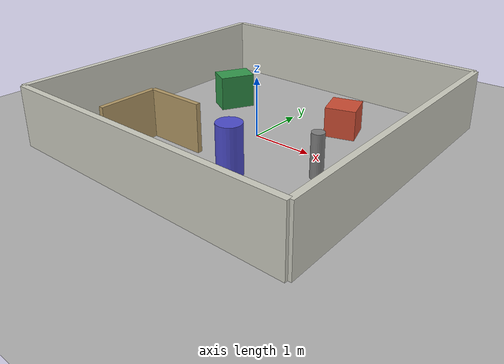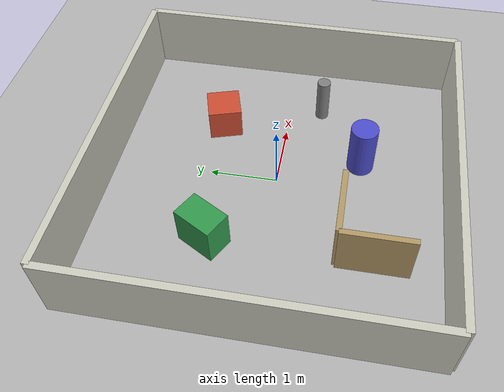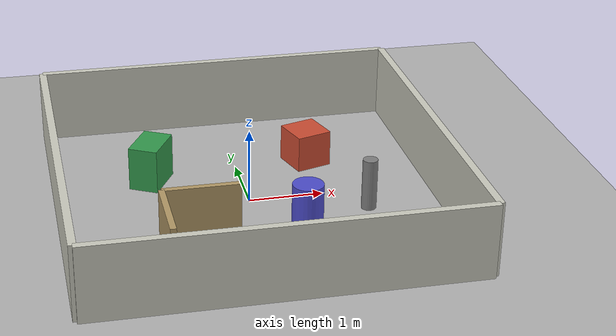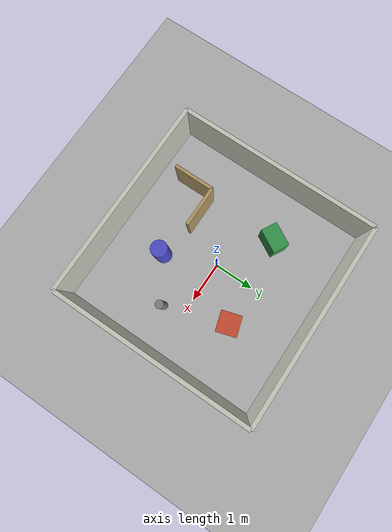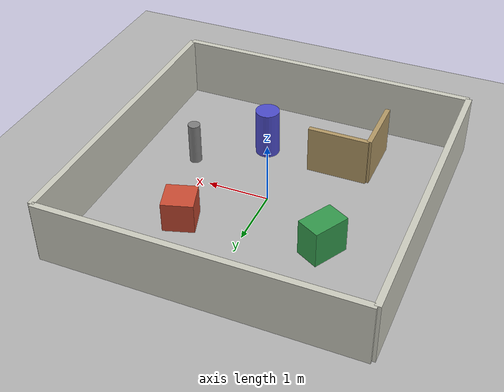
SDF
<sdf version="1.9">
 <world name="slam_test_world">
  <physics type="ode">
   <max_step_size>0.001</max_step_size>
   <real_time_factor>1.0</real_time_factor>
   <ode>
    <solver><type>quick</type><iters>150</iters><sor>1.3</sor></solver>
    <constraints><cfm>1e-5</cfm><erp>0.2</erp><contact_surface_layer>0.001</contact_surface_layer></constraints>
   </ode>
  </physics>
  <plugin filename="gz-sim-physics-system" name="gz::sim::systems::Physics"/>
  <plugin filename="gz-sim-user-commands-system" name="gz::sim::systems::UserCommands"/>
  <plugin filename="gz-sim-scene-broadcaster-system" name="gz::sim::systems::SceneBroadcaster"/>
  <plugin filename="gz-sim-sensors-system" name="gz::sim::systems::Sensors">
   <render_engine>ogre2</render_engine>
  </plugin>
  <light type="directional" name="sun">
   <pose>0 0 10 0 0 0</pose>
   <diffuse>0.9 0.9 0.9 1</diffuse>
   <specular>0.3 0.3 0.3 1</specular>
   <direction>-0.5 0.1 -0.9</direction>
  </light>
  <model name="ground_plane">
   <static>true</static>
   <link name="link">
    <collision name="collision">
     <geometry><plane><normal>0 0 1</normal><size>20 20</size></plane></geometry>
    </collision>
    <visual name="visual">
     <geometry><plane><normal>0 0 1</normal><size>20 20</size></plane></geometry>
     <material><ambient>0.6 0.6 0.6 1</ambient><diffuse>0.7 0.7 0.7 1</diffuse></material>
    </visual>
   </link>
  </model>
  <model name="wall_north">
   <static>true</static>
   <pose>0 2.5 0.5 0 0 0</pose>
   <link name="link">
    <collision name="collision"><geometry><box><size>5.0 0.1 1.0</size></box></geometry></collision>
    <visual name="visual">
     <geometry><box><size>5.0 0.1 1.0</size></box></geometry>
     <material><ambient>0.8 0.8 0.75 1</ambient></material>
    </visual>
   </link>
  </model>
  <model name="wall_south">
   <static>true</static>
   <pose>0 -2.5 0.5 0 0 0</pose>
   <link name="link">
    <collision name="collision"><geometry><box><size>5.0 0.1 1.0</size></box></geometry></collision>
    <visual name="visual">
     <geometry><box><size>5.0 0.1 1.0</size></box></geometry>
     <material><ambient>0.8 0.8 0.75 1</ambient></material>
    </visual>
   </link>
  </model>
  <model name="wall_east">
   <static>true</static>
   <pose>2.5 0 0.5 0 0 0</pose>
   <link name="link">
    <collision name="collision"><geometry><box><size>0.1 5.0 1.0</size></box></geometry></collision>
    <visual name="visual">
     <geometry><box><size>0.1 5.0 1.0</size></box></geometry>
     <material><ambient>0.8 0.8 0.75 1</ambient></material>
    </visual>
   </link>
  </model>
  <model name="wall_west">
   <static>true</static>
   <pose>-2.5 0 0.5 0 0 0</pose>
   <link name="link">
    <collision name="collision"><geometry><box><size>0.1 5.0 1.0</size></box></geometry></collision>
    <visual name="visual">
     <geometry><box><size>0.1 5.0 1.0</size></box></geometry>
     <material><ambient>0.8 0.8 0.75 1</ambient></material>
    </visual>
   </link>
  </model>
  <model name="box_obstacle_1">
   <static>true</static>
   <pose>1.0 1.0 0.25 0 0 0.3</pose>
   <link name="link">
    <collision name="collision"><geometry><box><size>0.5 0.5 0.5</size></box></geometry></collision>
    <visual name="visual">
     <geometry><box><size>0.5 0.5 0.5</size></box></geometry>
     <material><ambient>0.8 0.3 0.2 1</ambient></material>
    </visual>
   </link>
  </model>
  <model name="box_obstacle_2">
   <static>true</static>
   <pose>-1.2 0.8 0.3 0 0 -0.5</pose>
   <link name="link">
    <collision name="collision"><geometry><box><size>0.4 0.6 0.6</size></box></geometry></collision>
    <visual name="visual">
     <geometry><box><size>0.4 0.6 0.6</size></box></geometry>
     <material><ambient>0.2 0.6 0.3 1</ambient></material>
    </visual>
   </link>
  </model>
  <model name="cylinder_obstacle">
   <static>true</static>
   <pose>0.5 -1.2 0.4 0 0 0</pose>
   <link name="link">
    <collision name="collision">
     <geometry><cylinder><radius>0.2</radius><length>0.8</length></cylinder></geometry>
    </collision>
    <visual name="visual">
     <geometry><cylinder><radius>0.2</radius><length>0.8</length></cylinder></geometry>
     <material><ambient>0.3 0.3 0.8 1</ambient></material>
    </visual>
   </link>
  </model>
  <model name="l_wall_a">
   <static>true</static>
   <pose>-0.8 -1.0 0.4 0 0 0</pose>
   <link name="link">
    <collision name="collision"><geometry><box><size>1.0 0.08 0.8</size></box></geometry></collision>
    <visual name="visual">
     <geometry><box><size>1.0 0.08 0.8</size></box></geometry>
     <material><ambient>0.7 0.6 0.4 1</ambient></material>
    </visual>
   </link>
  </model>
  <model name="l_wall_b">
   <static>true</static>
   <pose>-1.3 -1.5 0.4 0 0 0</pose>
   <link name="link">
    <collision name="collision"><geometry><box><size>0.08 1.0 0.8</size></box></geometry></collision>
    <visual name="visual">
     <geometry><box><size>0.08 1.0 0.8</size></box></geometry>
     <material><ambient>0.7 0.6 0.4 1</ambient></material>
    </visual>
   </link>
  </model>
  <model name="pillar">
   <static>true</static>
   <pose>1.5 -0.5 0.35 0 0 0</pose>
   <link name="link">
    <collision name="collision">
     <geometry><cylinder><radius>0.1</radius><length>0.7</length></cylinder></geometry>
    </collision>
    <visual name="visual">
     <geometry><cylinder><radius>0.1</radius><length>0.7</length></cylinder></geometry>
     <material><ambient>0.5 0.5 0.5 1</ambient></material>
    </visual>
   </link>
  </model>
 </world>
</sdf>
